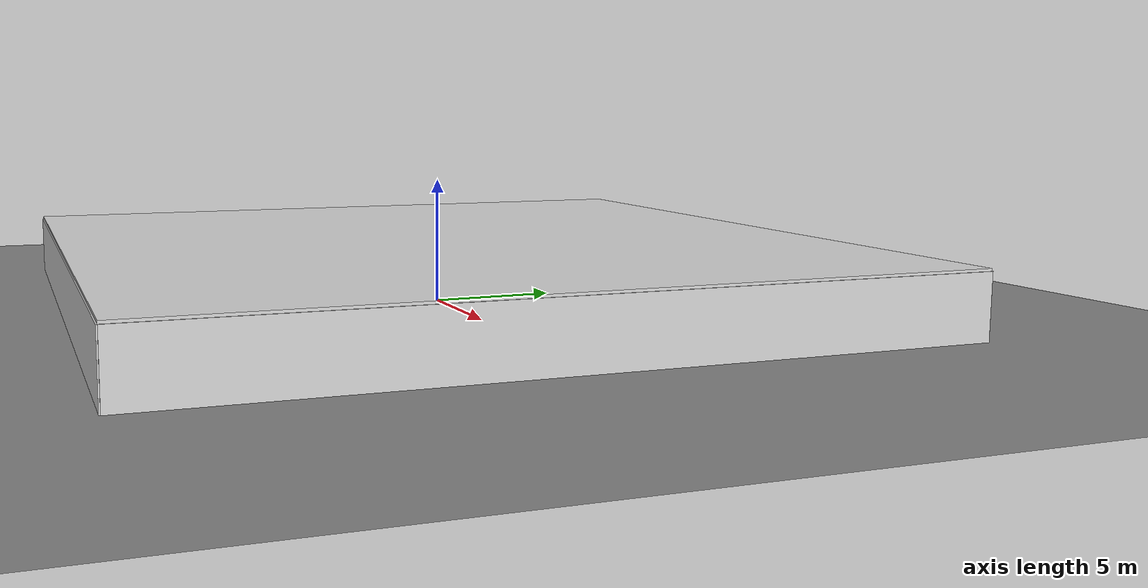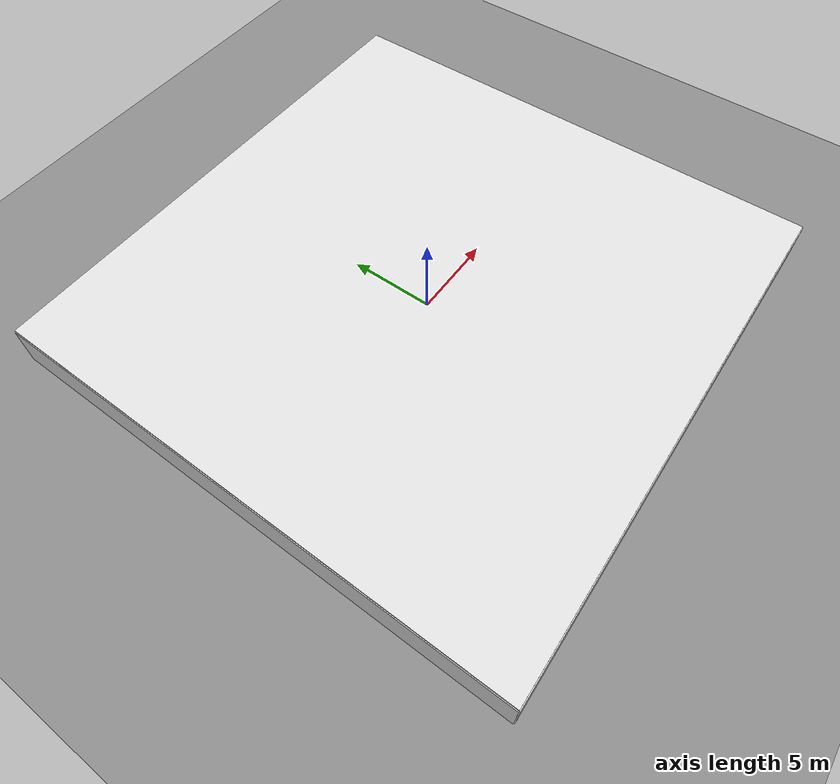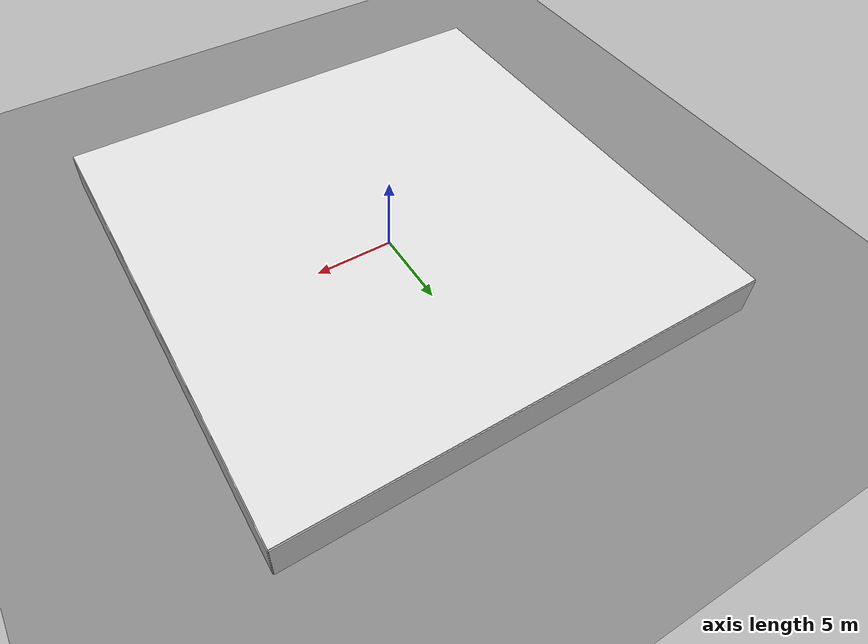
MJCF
<mujoco model="scene">

  <visual>
    <headlight diffuse="0.6 0.6 0.6" ambient="0.3 0.3 0.3" specular="0 0 0"/>
    <rgba haze="0.871 0.616 0.4 0.5"/>
    <global azimuth="-130" elevation="-20"/>
  </visual>

  <asset>
    <texture builtin="gradient" height="100" rgb1="0.9 0.9 0.9" rgb2="0.55 0.25 0.0" type="skybox" width="100"/>
    <include file="../../room/objects/materials.xml"/>
  </asset>

    <worldbody>
        <geom name="floor" friction="1 .1 .1" pos="0 0 0" size="0 0 0.125" type="plane" material="mat_floor" condim="3" conaffinity="1" contype="1" group="2"/>
        <light cutoff="1000" diffuse="1.5 1.5 1.5" dir="-0 0 -1.3" directional="true" exponent="10" pos="0 0 10.3" specular=".1 .1 .1" castshadow="false"/>

        <geom name="wall_negx" type="box" pos="-15.0 0.0 1.25" size="0.05 15.0 1.25" material="mat_wall"/>
        <geom name="wall_posx" type="box" pos=" 15.0 0.0 1.25" size="0.05 15.0 1.25" material="mat_wall"/>
        <geom name="wall_negy" type="box" pos="0.0 -15.0 1.25" size="15.0 0.05 1.25" material="mat_wall"/>
        <geom name="wall_posy" type="box" pos="0.0  15.0 1.25" size="15.0 0.05 1.25" material="mat_wall"/>

        <geom name="ceiling" type="box"
          pos="0 0 2.55"
          size="15.0 15.0 0.05"
          material="mat_wall"
          contype="1" conaffinity="1"
        />

        <!-- SCENARIO: table_08 -->
        <!-- TARGET_BODY_NAME: table_target -->
        <!-- LAYOUT: target=table, distance=far, side=left, difficulty=hard -->

        <!-- TARGET: table -->
        <body name="table_target" pos="6.2530 1.6882 0.0" euler="0 0 -2.4908">
          <include file="../../room/objects/table.xml"/>
        </body>

        <!-- OBSTRUCTOR: trash_can -->
        <body name="trash_can_obstructor1" pos="3.5836 0.6920 0.0" euler="0 0 1.4900">
          <include file="../../room/objects/trash_can.xml"/>
        </body>

        <!-- DISTRACTOR: cardboard_box -->
        <body name="cardboard_box_distractor1" pos="2.3789 -1.2703 0.0" euler="0 0 -0.1077">
          <include file="../../room/objects/cardboard_box.xml"/>
        </body>
        <!-- DISTRACTOR: chair -->
        <body name="chair_distractor2" pos="5.3389 -1.0303 0.0" euler="0 0 0.4959">
          <include file="../../room/objects/chair.xml"/>
        </body>
    </worldbody>
</mujoco>

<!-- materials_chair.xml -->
<mujoco>
  <texture name="tex_wood_chair" type="2d" file="oak_veneer_01_diff_2k.png"/>
  <material name="mat_wood_chair"
            texture="tex_wood_chair"
            texrepeat="1.2 1.2"
            texuniform="true"
            rgba="1 1 1 1"
            specular="0.22"
            shininess="0.35"
            reflectance="0.04"/>
</mujoco>

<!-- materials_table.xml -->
<mujoco>
  <texture name="tex_wood_table" type="2d" file="wood_table_001_diff_2k.png"/>
  <material name="mat_wood_table"
            texture="tex_wood_table"
            texrepeat="1.2 1.2"
            texuniform="true"
            rgba="1 1 1 1"
            specular="0.22"
            shininess="0.35"
            reflectance="0.04"/>
</mujoco>

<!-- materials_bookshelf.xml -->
<mujoco>
  <texture name="tex_bookshelf_wood"
           type="2d"
           file="oak_veneer_01_diff_2k.png"/>

  <material name="mat_wood_bookshelf"
            texture="tex_bookshelf_wood"
            texrepeat="1.2 1.2"
            texuniform="true"
            rgba="1 1 1 1"
            specular="0.22"
            shininess="0.35"
            reflectance="0.04"/>
</mujoco>

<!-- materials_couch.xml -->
<mujoco>
  <texture name="tex_wood_couch" type="2d" file="wood_table_001_diff_2k.png"/>
  <material name="mat_wood_couch"
            texture="tex_wood_couch"
            texrepeat="1.2 1.2"
            texuniform="true"
            rgba="1 1 1 1"
            specular="0.22"
            shininess="0.35"
            reflectance="0.04"/>

  <texture name="tex_fabric" type="2d" file="rough_linen_diff_2k.png"/>
  <material name="mat_fabric"
            texture="tex_fabric"
            texrepeat="1.2 1.2"
            texuniform="true"
            rgba="1 1 1 1"
            specular="0.10"
            shininess="0.08"
            reflectance="0.01"/>
</mujoco>

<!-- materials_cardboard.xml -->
<mujoco>
  <texture name="tex_cardboard" type="2d" file="cardboard.png"/>
  <material name="mat_cardboard"
            texture="tex_cardboard"
            texrepeat="1.2 1.2"
            texuniform="true"
            rgba="1 1 1 1"
            specular="0.10"
            shininess="0.08"
            reflectance="0.01"/>
</mujoco>

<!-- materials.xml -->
<mujoco>
  <material name="mat_wall" rgba="0.85 0.85 0.85 1"/>
  <include file="materials_chair.xml"/>

  <include file="materials_table.xml"/>

  <include file="materials_bookshelf.xml"/>
  <material name="mat_book_red" rgba="0.70 0.18 0.16 1"/>
  <material name="mat_book_blue" rgba="0.16 0.31 0.62 1"/>
  <material name="mat_book_green" rgba="0.22 0.45 0.24 1"/>
  <material name="mat_book_yellow" rgba="0.78 0.66 0.22 1"/>
  <material name="mat_book_dark" rgba="0.20 0.18 0.17 1"/>

  <include file="materials_couch.xml"/>
  <include file="materials_cardboard.xml"/>

  <texture name="tex_metal" type="2d" file="metal.png"/>
  <material name="mat_metal" texture="tex_metal" texrepeat="2 2" reflectance="0.3"/>
  <material name="mat_trash_can_dark_green"
            texture="tex_metal"
            texrepeat="2 2"
            rgba="0.10 0.18 0.12 1"
            specular="0.18"
            shininess="0.20"
            reflectance="0.02"/>

  <texture name="tex_floor" type="2d" builtin="checker" width="512" height="512"
           rgb1="0.55 0.55 0.55" rgb2="0.50 0.50 0.50"/>
  <material name="mat_floor" texture="tex_floor" texrepeat="4 4" reflectance="0.00"/>

</mujoco>

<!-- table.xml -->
<mujoco>
  <body>
    <!-- tabletop -->
    <geom name="table_top" type="box"
          pos="0 0 0.595" size="0.62 0.42 0.035"
          material="mat_wood_table"/>
    <geom name="table_helper_front" type="box"
          pos="0 0.295 0.275" size="0.450 0.012 0.275"
          rgba="0 0 0 0"/>
    <geom name="table_helper_back" type="box"
          pos="0 -0.295 0.275" size="0.450 0.012 0.275"
          rgba="0 0 0 0"/>
    <geom name="table_helper_left" type="box"
          pos="-0.515 0 0.275" size="0.012 0.245 0.275"
          rgba="0 0 0 0"/>
    <geom name="table_helper_right" type="box"
          pos="0.515 0 0.275" size="0.012 0.245 0.275"
          rgba="0 0 0 0"/>
    <geom name="table_top_bevel_front" type="box"
          pos="0 0.395 0.555" size="0.58 0.012 0.012"
          material="mat_wood_table"/>
    <geom name="table_top_bevel_back" type="box"
          pos="0 -0.395 0.555" size="0.58 0.012 0.012"
          material="mat_wood_table"/>
    <geom name="table_top_bevel_left" type="box"
          pos="-0.595 0 0.555" size="0.012 0.36 0.012"
          material="mat_wood_table"/>
    <geom name="table_top_bevel_right" type="box"
          pos="0.595 0 0.555" size="0.012 0.36 0.012"
          material="mat_wood_table"/>

    <!-- apron -->
    <geom name="table_apron_front" type="box"
          pos="0 0.335 0.515" size="0.53 0.025 0.045"
          material="mat_wood_table"/>
    <geom name="table_apron_back" type="box"
          pos="0 -0.335 0.515" size="0.53 0.025 0.045"
          material="mat_wood_table"/>
    <geom name="table_apron_left" type="box"
          pos="-0.535 0 0.515" size="0.025 0.29 0.045"
          material="mat_wood_table"/>
    <geom name="table_apron_right" type="box"
          pos="0.535 0 0.515" size="0.025 0.29 0.045"
          material="mat_wood_table"/>

    <!-- legs -->
    <geom name="table_leg_fl" type="box"
          pos="0.515 0.295 0.255" size="0.032 0.032 0.255"
          material="mat_wood_table"/>
    <geom name="table_leg_fr" type="box"
          pos="0.515 -0.295 0.255" size="0.032 0.032 0.255"
          material="mat_wood_table"/>
    <geom name="table_leg_rl" type="box"
          pos="-0.515 0.295 0.255" size="0.032 0.032 0.255"
          material="mat_wood_table"/>
    <geom name="table_leg_rr" type="box"
          pos="-0.515 -0.295 0.255" size="0.032 0.032 0.255"
          material="mat_wood_table"/>

    <!-- lower stretchers -->
    <geom name="table_stretcher_left" type="box"
          pos="-0.515 0 0.105" size="0.015 0.295 0.015"
          material="mat_wood_table"/>
    <geom name="table_stretcher_right" type="box"
          pos="0.515 0 0.105" size="0.015 0.295 0.015"
          material="mat_wood_table"/>
    <geom name="table_stretcher_front" type="box"
          pos="0 0.295 0.120" size="0.515 0.015 0.015"
          material="mat_wood_table"/>
    <geom name="table_stretcher_back" type="box"
          pos="0 -0.295 0.120" size="0.515 0.015 0.015"
          material="mat_wood_table"/>

  </body>
</mujoco>

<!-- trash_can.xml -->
<mujoco>
  <body>
    <!-- bottom foot ring -->
    <geom name="trash_can_base_ring" type="cylinder"
          pos="0 0 0.020" size="0.115 0.020"
          material="mat_trash_can_dark_green"/>

    <!-- main body -->
    <geom name="trash_can_body" type="cylinder"
          pos="0 0 0.155" size="0.138 0.135"
          material="mat_trash_can_dark_green"/>

    <!-- upper collar -->
    <geom name="trash_can_upper_band" type="cylinder"
          pos="0 0 0.265" size="0.152 0.016"
          material="mat_trash_can_dark_green"/>

    <!-- rolled top rim -->
    <geom name="trash_can_rim" type="cylinder"
          pos="0 0 0.292" size="0.168 0.010"
          material="mat_trash_can_dark_green"/>

    <!-- inset inner lip for a more finished opening -->
    <geom name="trash_can_inner_lip" type="cylinder"
          pos="0 0 0.276" size="0.126 0.008"
          material="mat_trash_can_dark_green"/>
  </body>
</mujoco>

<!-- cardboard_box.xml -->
<mujoco>
  <body>
    <geom name="cardboard_box_base" type="box" pos="0 0 0.015" size="0.20 0.20 0.015" material="mat_cardboard"/>
    <geom name="cardboard_box_wall_front" type="box" pos="0  0.185 0.155" size="0.20 0.015 0.125" material="mat_cardboard"/>
    <geom name="cardboard_box_wall_back" type="box" pos="0 -0.185 0.155" size="0.20 0.015 0.125" material="mat_cardboard"/>
    <geom name="cardboard_box_wall_left" type="box" pos="-0.185 0 0.155" size="0.015 0.20 0.125" material="mat_cardboard"/>
    <geom name="cardboard_box_wall_right" type="box" pos=" 0.185 0 0.155" size="0.015 0.20 0.125" material="mat_cardboard"/>
  </body>
</mujoco>

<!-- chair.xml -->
<mujoco>
  <body>
    <!-- seat frame and seat board -->
    <geom name="chair_seat_top" type="box"
          pos="0 0 0.43" size="0.24 0.22 0.018"
          material="mat_wood_chair"/>
    <geom name="chair_helper_front" type="box"
          pos="0 0.185 0.185" size="0.187 0.012 0.185"
          rgba="0 0 0 0"/>
    <geom name="chair_helper_back" type="box"
          pos="0 -0.185 0.185" size="0.187 0.012 0.185"
          rgba="0 0 0 0"/>
    <geom name="chair_helper_left" type="box"
          pos="-0.205 0 0.185" size="0.012 0.167 0.185"
          rgba="0 0 0 0"/>
    <geom name="chair_helper_right" type="box"
          pos="0.205 0 0.185" size="0.012 0.167 0.185"
          rgba="0 0 0 0"/>
    <geom name="chair_seat_apron_front" type="box"
          pos="0 0.195 0.385" size="0.21 0.015 0.028"
          material="mat_wood_chair"/>
    <geom name="chair_seat_apron_back" type="box"
          pos="0 -0.195 0.385" size="0.21 0.015 0.028"
          material="mat_wood_chair"/>
    <geom name="chair_seat_apron_left" type="box"
          pos="-0.225 0 0.385" size="0.015 0.18 0.028"
          material="mat_wood_chair"/>
    <geom name="chair_seat_apron_right" type="box"
          pos="0.225 0 0.385" size="0.015 0.18 0.028"
          material="mat_wood_chair"/>

    <!-- front legs -->
    <geom name="chair_leg_fl" type="box"
          pos="-0.205 0.185 0.195" size="0.018 0.018 0.195"
          material="mat_wood_chair"/>
    <geom name="chair_leg_fr" type="box"
          pos="0.205 0.185 0.195" size="0.018 0.018 0.195"
          material="mat_wood_chair"/>

    <!-- rear legs extend upward into the backrest posts -->
    <geom name="chair_leg_rl" type="box"
          pos="-0.205 -0.185 0.365" size="0.019 0.019 0.535"
          material="mat_wood_chair"/>
    <geom name="chair_leg_rr" type="box"
          pos="0.205 -0.185 0.365" size="0.019 0.019 0.535"
          material="mat_wood_chair"/>

    <!-- lower stretchers -->
    <geom name="chair_stretcher_front" type="box"
          pos="0 0.185 0.165" size="0.187 0.012 0.012"
          material="mat_wood_chair"/>
    <geom name="chair_stretcher_back" type="box"
          pos="0 -0.185 0.165" size="0.187 0.012 0.012"
          material="mat_wood_chair"/>
    <geom name="chair_stretcher_left" type="box"
          pos="-0.205 0 0.150" size="0.012 0.185 0.012"
          material="mat_wood_chair"/>
    <geom name="chair_stretcher_right" type="box"
          pos="0.205 0 0.150" size="0.012 0.185 0.012"
          material="mat_wood_chair"/>

    <!-- backrest frame -->
    <geom name="chair_back_top" type="box"
          pos="0 -0.185 0.865" size="0.18 0.016 0.022"
          material="mat_wood_chair"/>
    <geom name="chair_back_mid" type="box"
          pos="0 -0.178 0.710" size="0.155 0.013 0.018"
          material="mat_wood_chair"/>

    <!-- vertical back slats -->
    <geom name="chair_back_slat_l" type="box"
          pos="-0.085 -0.175 0.565" size="0.014 0.010 0.160"
          material="mat_wood_chair"/>
    <geom name="chair_back_slat_c" type="box"
          pos="0 -0.175 0.565" size="0.014 0.010 0.160"
          material="mat_wood_chair"/>
    <geom name="chair_back_slat_r" type="box"
          pos="0.085 -0.175 0.565" size="0.014 0.010 0.160"
          material="mat_wood_chair"/>
  </body>
</mujoco>
